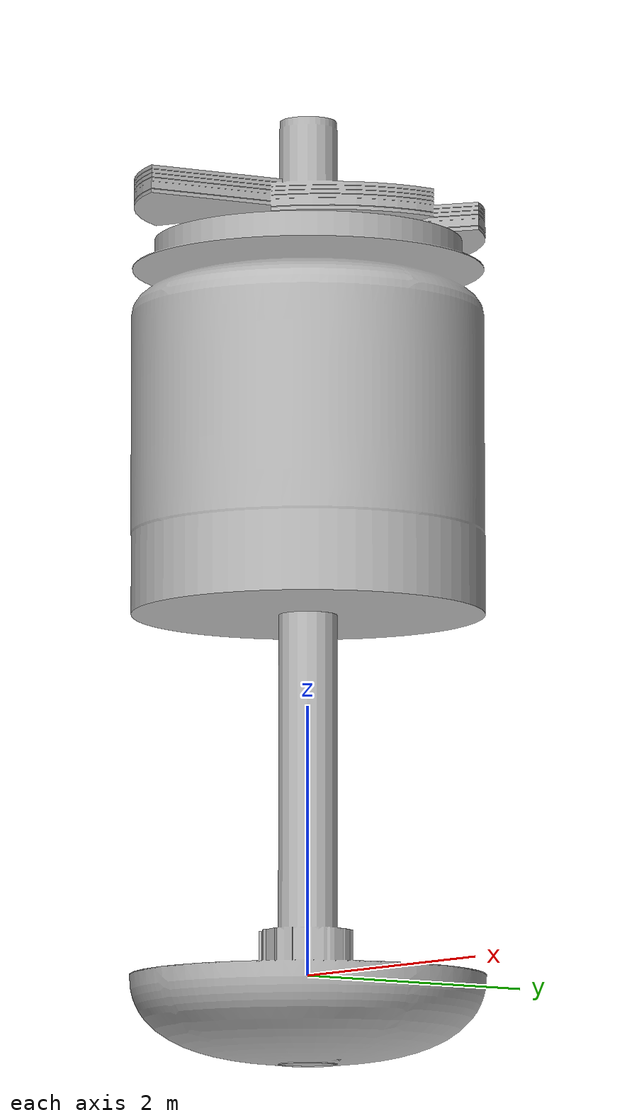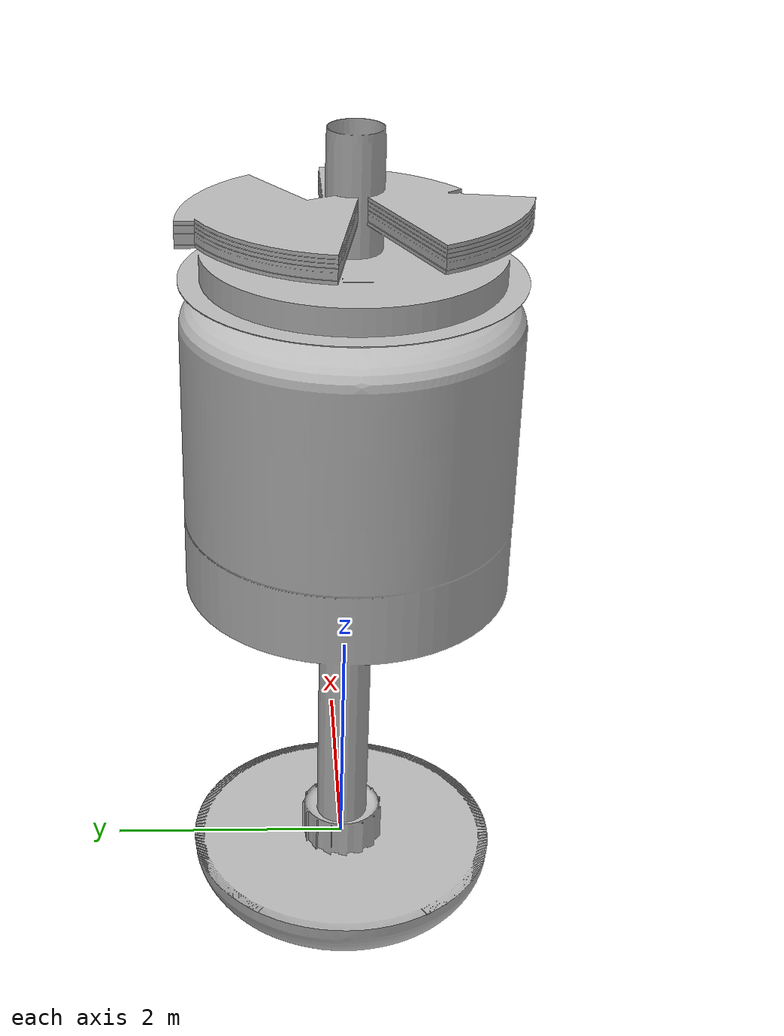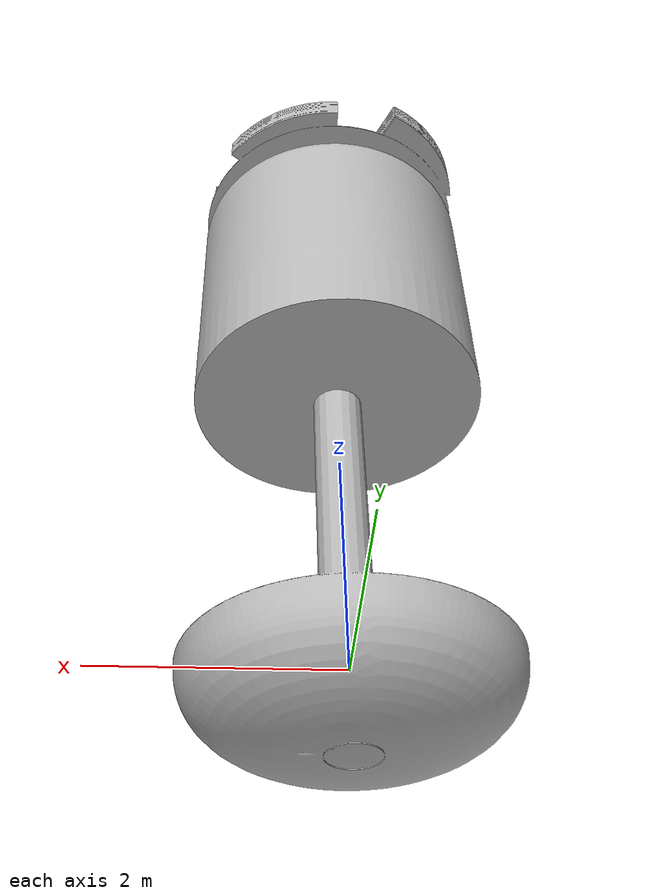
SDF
<?xml version='1.0'?>
<sdf version='1.6'>
  <model name='central_column'>
    <static>true</static>
    <link name='link'>
      <pose>0 0 0 0 0 0</pose>
      <inertial>
        <mass>1</mass>
        <inertia>
          <ixx>0.166667</ixx>
          <ixy>0</ixy>
          <ixz>0</ixz>
          <iyy>0.166667</iyy>
          <iyz>0</iyz>
          <izz>0.166667</izz>
        </inertia>
      </inertial>
      <visual name='visual'>
        <pose>0 0 0 0 0 0</pose>
        <geometry>
          <mesh>
            <uri>model://central_column/central_column.stl</uri>
            <scale>0.33 0.33 0.33</scale>
          </mesh>
        </geometry>
        <material>
          <lighting>1</lighting>
          <script>
            <uri>model://central_column</uri>
            <name>central_column/Diffuse</name>
          </script>
        </material>
      </visual>
      <collision name='collision'>
        <laser_retro>0</laser_retro>
        <max_contacts>10</max_contacts>
        <pose frame=''>0 0 0.25 0 -0 0</pose>
        <geometry>
          <cylinder>
            <radius>0.3</radius>
            <length>1</length>
          </cylinder>
        </geometry>
        <surface>
          <friction>
            <ode>
              <mu>1</mu>
              <mu2>1</mu2>
              <fdir1>0 0 0</fdir1>
              <slip1>0</slip1>
              <slip2>0</slip2>
            </ode>
            <torsional>
              <coefficient>1</coefficient>
              <patch_radius>0</patch_radius>
              <surface_radius>0</surface_radius>
              <use_patch_radius>1</use_patch_radius>
              <ode>
                <slip>0</slip>
              </ode>
            </torsional>
          </friction>
          <bounce>
            <restitution_coefficient>0</restitution_coefficient>
            <threshold>1e+06</threshold>
          </bounce>
          <contact>
            <collide_without_contact>1</collide_without_contact>
            <collide_without_contact_bitmask>1</collide_without_contact_bitmask>
            <collide_bitmask>1</collide_bitmask>
            <ode>
              <soft_cfm>0</soft_cfm>
              <soft_erp>0.2</soft_erp>
              <kp>1e+13</kp>
              <kd>1</kd>
              <max_vel>0.01</max_vel>
              <min_depth>0</min_depth>
            </ode>
            <bullet>
              <split_impulse>1</split_impulse>
              <split_impulse_penetration_threshold>-0.01</split_impulse_penetration_threshold>
              <soft_cfm>0</soft_cfm>
              <soft_erp>0.2</soft_erp>
              <kp>1e+13</kp>
              <kd>1</kd>
            </bullet>
          </contact>
        </surface>
      </collision>
    </link>
  </model>
</sdf>
